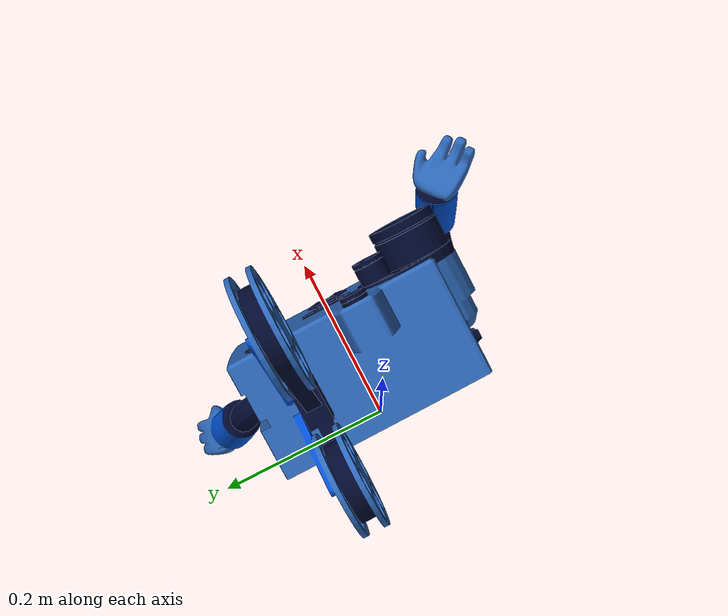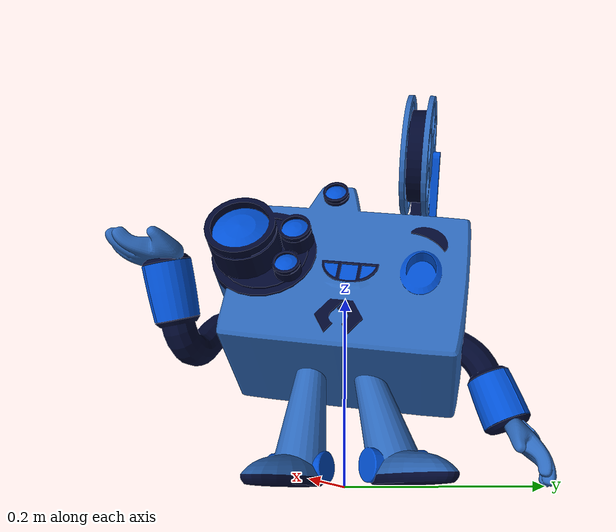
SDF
<?xml version="1.0"?>
<sdf version="1.9">
  <model name="harmonic_mascot">
    <static>true</static>
    <link name="base_link">
      <collision name="collision">
        <pose>0 0 0 0 0 1.57</pose>
        <geometry>
          <mesh>
            <uri>meshes/harmonic_mascot.dae</uri>
            <scale>0.2 0.2 0.2</scale>
          </mesh>
        </geometry>
      </collision>
      <visual name="visual">
        <pose>0 0 0 0 0 1.57</pose>
        <geometry>
          <mesh>
            <uri>meshes/harmonic_mascot.dae</uri>
            <scale>0.2 0.2 0.2</scale>
          </mesh>
        </geometry>
      </visual>
      <!-- uncomment to debug projector pose -->
      <projector name="projector">
        <pose>0.13 -0.09 0.25 0 -0.3 0</pose>
        <near_clip>1</near_clip>
        <far_clip>1.8</far_clip>
        <fov>0.4</fov>
        <texture>materials/textures/harmonic_logo.png</texture>
      </projector>
      <light name="projector_light" type="spot">
        <pose>0.13 -0.09 0.25 0 -0.3 0</pose>
        <diffuse>1 1 1 1</diffuse>
        <specular>0.5 0.5 0.5 1</specular>
        <attenuation>
          <range>5</range>
          <linear>0.5</linear>
          <constant>0.8</constant>
          <quadratic>0.01</quadratic>
        </attenuation>
        <direction>1 0 0</direction>
        <spot>
          <inner_angle>0.1</inner_angle>
          <outer_angle>0.6</outer_angle>
          <falloff>0.8</falloff>
        </spot>
        <cast_shadows>false</cast_shadows>
        <visualize>false</visualize>
      </light>
    </link>
  </model>
</sdf>
